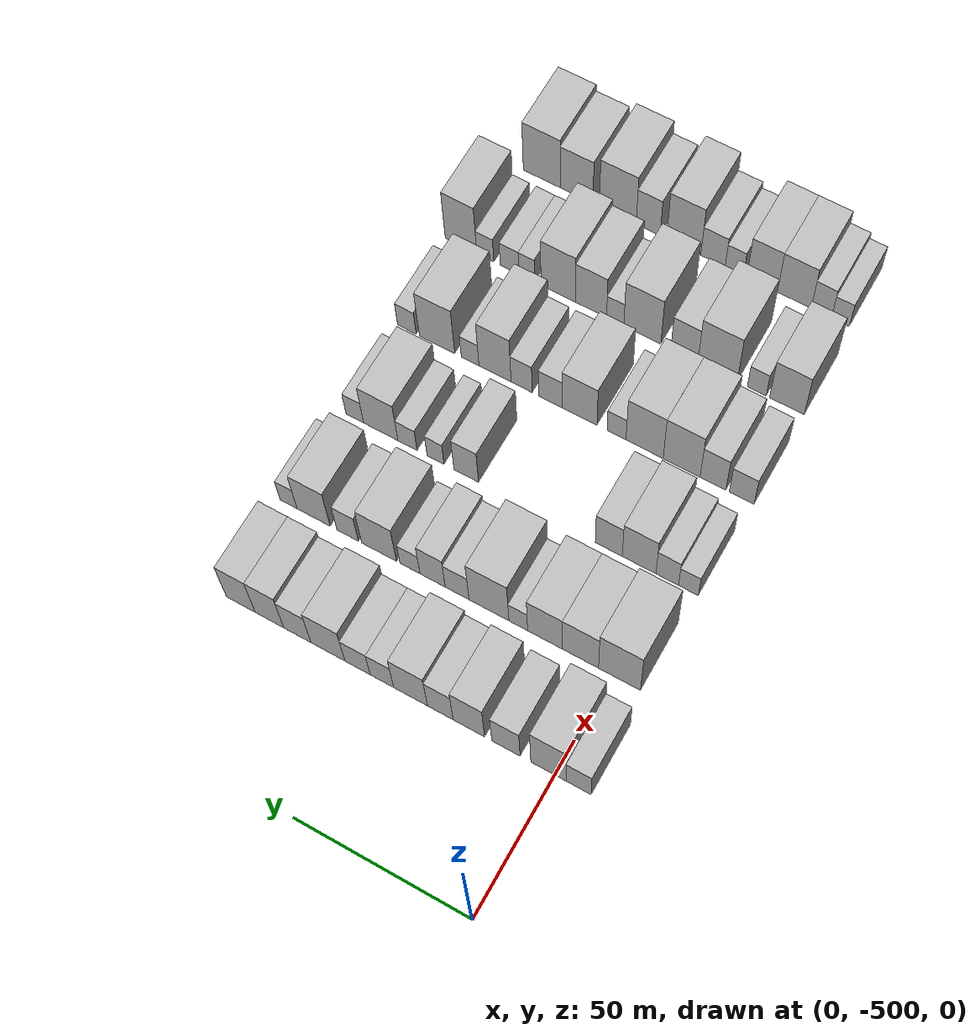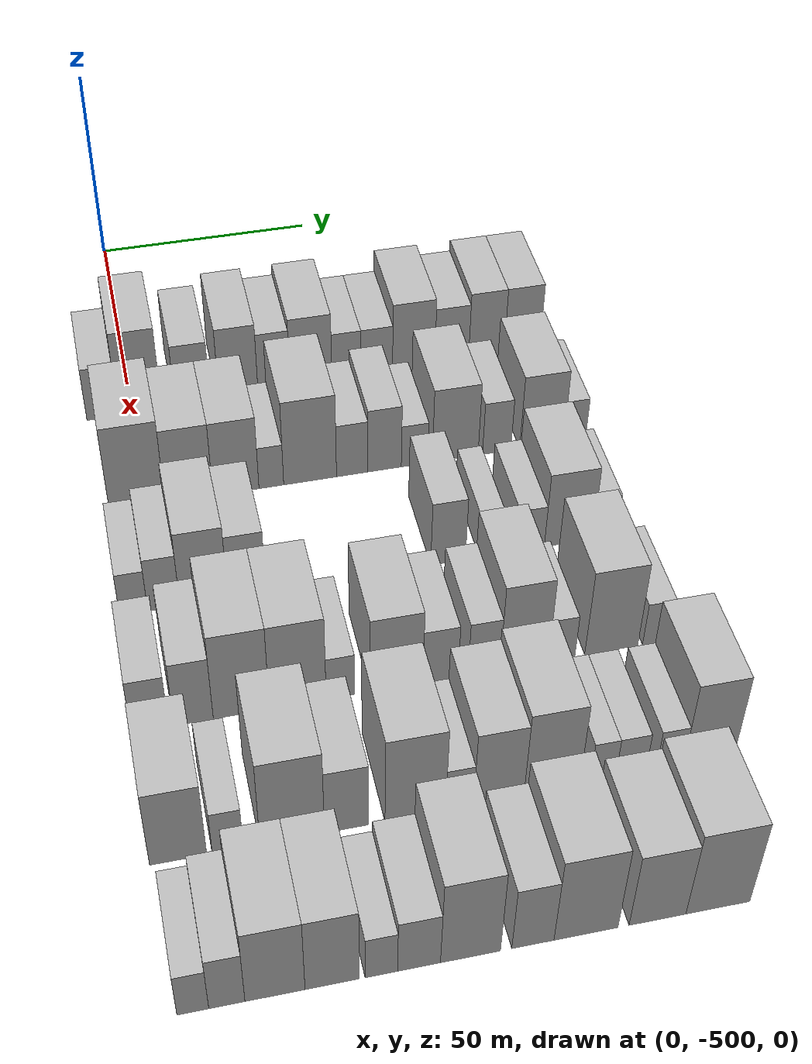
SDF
<sdf version="1.6">
 <world name="default">
  <model name="building_1">
   <static>1</static>
   <pose>50.0000 -506.4859 0 0.000000 0.000000 0.000000</pose>
   <link name="link">
    <pose>0 0 7.50 0 0 0</pose>
    <collision name="collision"><geometry><box><size>20.0000 7.0282 15.0000</size></box></geometry></collision>
    <visual name="visual">
     <cast_shadows>0</cast_shadows>
     <geometry><box><size>20.0000 7.0282 15.0000</size></box></geometry>
     <material>
      <script>
       <uri>model://HANNAS_wall/materials/scripts</uri>
       <uri>model://HANNAS_wall/materials/textures</uri>
       <name>vrc/HANNAS_wall</name>
      </script>
     </material>
    </visual>
   </link>
  </model>
  <model name="building_2">
   <static>1</static>
   <pose>50.0000 -498.0735 0 0.000000 0.000000 0.000000</pose>
   <link name="link">
    <pose>0 0 12.00 0 0 0</pose>
    <collision name="collision"><geometry><box><size>20.0000 9.7965 24.0000</size></box></geometry></collision>
    <visual name="visual">
     <cast_shadows>0</cast_shadows>
     <geometry><box><size>20.0000 9.7965 24.0000</size></box></geometry>
     <material>
      <script>
       <uri>model://HANNAS_wall/materials/scripts</uri>
       <uri>model://HANNAS_wall/materials/textures</uri>
       <name>vrc/HANNAS_wall</name>
      </script>
     </material>
    </visual>
   </link>
  </model>
  <model name="building_3">
   <static>1</static>
   <pose>50.0000 -486.1801 0 0.000000 0.000000 0.000000</pose>
   <link name="link">
    <pose>0 0 9.00 0 0 0</pose>
    <collision name="collision"><geometry><box><size>20.0000 7.9903 18.0000</size></box></geometry></collision>
    <visual name="visual">
     <cast_shadows>0</cast_shadows>
     <geometry><box><size>20.0000 7.9903 18.0000</size></box></geometry>
     <material>
      <script>
       <uri>model://HANNAS_wall/materials/scripts</uri>
       <uri>model://HANNAS_wall/materials/textures</uri>
       <name>vrc/HANNAS_wall</name>
      </script>
     </material>
    </visual>
   </link>
  </model>
  <model name="building_4">
   <static>1</static>
   <pose>50.0000 -475.7172 0 0.000000 0.000000 0.000000</pose>
   <link name="link">
    <pose>0 0 10.50 0 0 0</pose>
    <collision name="collision"><geometry><box><size>20.0000 8.9356 21.0000</size></box></geometry></collision>
    <visual name="visual">
     <cast_shadows>0</cast_shadows>
     <geometry><box><size>20.0000 8.9356 21.0000</size></box></geometry>
     <material>
      <script>
       <uri>model://HANNAS_wall/materials/scripts</uri>
       <uri>model://HANNAS_wall/materials/textures</uri>
       <name>vrc/HANNAS_wall</name>
      </script>
     </material>
    </visual>
   </link>
  </model>
  <model name="building_5">
   <static>1</static>
   <pose>50.0000 -467.5836 0 0.000000 0.000000 0.000000</pose>
   <link name="link">
    <pose>0 0 9.00 0 0 0</pose>
    <collision name="collision"><geometry><box><size>20.0000 7.3315 18.0000</size></box></geometry></collision>
    <visual name="visual">
     <cast_shadows>0</cast_shadows>
     <geometry><box><size>20.0000 7.3315 18.0000</size></box></geometry>
     <material>
      <script>
       <uri>model://HANNAS_wall/materials/scripts</uri>
       <uri>model://HANNAS_wall/materials/textures</uri>
       <name>vrc/HANNAS_wall</name>
      </script>
     </material>
    </visual>
   </link>
  </model>
  <model name="building_6">
   <static>1</static>
   <pose>50.0000 -459.0669 0 0.000000 0.000000 0.000000</pose>
   <link name="link">
    <pose>0 0 10.50 0 0 0</pose>
    <collision name="collision"><geometry><box><size>20.0000 9.7020 21.0000</size></box></geometry></collision>
    <visual name="visual">
     <cast_shadows>0</cast_shadows>
     <geometry><box><size>20.0000 9.7020 21.0000</size></box></geometry>
     <material>
      <script>
       <uri>model://HANNAS_wall/materials/scripts</uri>
       <uri>model://HANNAS_wall/materials/textures</uri>
       <name>vrc/HANNAS_wall</name>
      </script>
     </material>
    </visual>
   </link>
  </model>
  <model name="building_7">
   <static>1</static>
   <pose>50.0000 -450.8194 0 0.000000 0.000000 0.000000</pose>
   <link name="link">
    <pose>0 0 7.50 0 0 0</pose>
    <collision name="collision"><geometry><box><size>20.0000 6.7930 15.0000</size></box></geometry></collision>
    <visual name="visual">
     <cast_shadows>0</cast_shadows>
     <geometry><box><size>20.0000 6.7930 15.0000</size></box></geometry>
     <material>
      <script>
       <uri>model://HANNAS_wall/materials/scripts</uri>
       <uri>model://HANNAS_wall/materials/textures</uri>
       <name>vrc/HANNAS_wall</name>
      </script>
     </material>
    </visual>
   </link>
  </model>
  <model name="building_8">
   <static>1</static>
   <pose>50.0000 -443.7430 0 0.000000 0.000000 0.000000</pose>
   <link name="link">
    <pose>0 0 7.50 0 0 0</pose>
    <collision name="collision"><geometry><box><size>20.0000 7.3599 15.0000</size></box></geometry></collision>
    <visual name="visual">
     <cast_shadows>0</cast_shadows>
     <geometry><box><size>20.0000 7.3599 15.0000</size></box></geometry>
     <material>
      <script>
       <uri>model://HANNAS_wall/materials/scripts</uri>
       <uri>model://HANNAS_wall/materials/textures</uri>
       <name>vrc/HANNAS_wall</name>
      </script>
     </material>
    </visual>
   </link>
  </model>
  <model name="building_9">
   <static>1</static>
   <pose>50.0000 -435.0999 0 0.000000 0.000000 0.000000</pose>
   <link name="link">
    <pose>0 0 10.50 0 0 0</pose>
    <collision name="collision"><geometry><box><size>20.0000 9.9263 21.0000</size></box></geometry></collision>
    <visual name="visual">
     <cast_shadows>0</cast_shadows>
     <geometry><box><size>20.0000 9.9263 21.0000</size></box></geometry>
     <material>
      <script>
       <uri>model://HANNAS_wall/materials/scripts</uri>
       <uri>model://HANNAS_wall/materials/textures</uri>
       <name>vrc/HANNAS_wall</name>
      </script>
     </material>
    </visual>
   </link>
  </model>
  <model name="building_10">
   <static>1</static>
   <pose>50.0000 -426.1327 0 0.000000 0.000000 0.000000</pose>
   <link name="link">
    <pose>0 0 9.00 0 0 0</pose>
    <collision name="collision"><geometry><box><size>20.0000 8.0081 18.0000</size></box></geometry></collision>
    <visual name="visual">
     <cast_shadows>0</cast_shadows>
     <geometry><box><size>20.0000 8.0081 18.0000</size></box></geometry>
     <material>
      <script>
       <uri>model://HANNAS_wall/materials/scripts</uri>
       <uri>model://HANNAS_wall/materials/textures</uri>
       <name>vrc/HANNAS_wall</name>
      </script>
     </material>
    </visual>
   </link>
  </model>
  <model name="building_11">
   <static>1</static>
   <pose>50.0000 -417.8920 0 0.000000 0.000000 0.000000</pose>
   <link name="link">
    <pose>0 0 10.50 0 0 0</pose>
    <collision name="collision"><geometry><box><size>20.0000 8.4732 21.0000</size></box></geometry></collision>
    <visual name="visual">
     <cast_shadows>0</cast_shadows>
     <geometry><box><size>20.0000 8.4732 21.0000</size></box></geometry>
     <material>
      <script>
       <uri>model://HANNAS_wall/materials/scripts</uri>
       <uri>model://HANNAS_wall/materials/textures</uri>
       <name>vrc/HANNAS_wall</name>
      </script>
     </material>
    </visual>
   </link>
  </model>
  <model name="building_12">
   <static>1</static>
   <pose>50.0000 -409.3800 0 0.000000 0.000000 0.000000</pose>
   <link name="link">
    <pose>0 0 10.50 0 0 0</pose>
    <collision name="collision"><geometry><box><size>20.0000 8.5509 21.0000</size></box></geometry></collision>
    <visual name="visual">
     <cast_shadows>0</cast_shadows>
     <geometry><box><size>20.0000 8.5509 21.0000</size></box></geometry>
     <material>
      <script>
       <uri>model://HANNAS_wall/materials/scripts</uri>
       <uri>model://HANNAS_wall/materials/textures</uri>
       <name>vrc/HANNAS_wall</name>
      </script>
     </material>
    </visual>
   </link>
  </model>
  <model name="building_107">
   <static>1</static>
   <pose>79.0000 -502.0771 0 0.000000 0.000000 0.000000</pose>
   <link name="link">
    <pose>0 0 12.00 0 0 0</pose>
    <collision name="collision"><geometry><box><size>20.0000 11.8457 24.0000</size></box></geometry></collision>
    <visual name="visual">
     <cast_shadows>0</cast_shadows>
     <geometry><box><size>20.0000 11.8457 24.0000</size></box></geometry>
     <material>
      <script>
       <uri>model://HANNAS_wall/materials/scripts</uri>
       <uri>model://HANNAS_wall/materials/textures</uri>
       <name>vrc/HANNAS_wall</name>
      </script>
     </material>
    </visual>
   </link>
  </model>
  <model name="building_108">
   <static>1</static>
   <pose>79.0000 -491.0180 0 0.000000 0.000000 0.000000</pose>
   <link name="link">
    <pose>0 0 10.50 0 0 0</pose>
    <collision name="collision"><geometry><box><size>20.0000 10.2726 21.0000</size></box></geometry></collision>
    <visual name="visual">
     <cast_shadows>0</cast_shadows>
     <geometry><box><size>20.0000 10.2726 21.0000</size></box></geometry>
     <material>
      <script>
       <uri>model://HANNAS_wall/materials/scripts</uri>
       <uri>model://HANNAS_wall/materials/textures</uri>
       <name>vrc/HANNAS_wall</name>
      </script>
     </material>
    </visual>
   </link>
  </model>
  <model name="building_109">
   <static>1</static>
   <pose>79.0000 -480.9050 0 0.000000 0.000000 0.000000</pose>
   <link name="link">
    <pose>0 0 10.50 0 0 0</pose>
    <collision name="collision"><geometry><box><size>20.0000 9.9533 21.0000</size></box></geometry></collision>
    <visual name="visual">
     <cast_shadows>0</cast_shadows>
     <geometry><box><size>20.0000 9.9533 21.0000</size></box></geometry>
     <material>
      <script>
       <uri>model://HANNAS_wall/materials/scripts</uri>
       <uri>model://HANNAS_wall/materials/textures</uri>
       <name>vrc/HANNAS_wall</name>
      </script>
     </material>
    </visual>
   </link>
  </model>
  <model name="building_110">
   <static>1</static>
   <pose>79.0000 -473.2310 0 0.000000 0.000000 0.000000</pose>
   <link name="link">
    <pose>0 0 6.00 0 0 0</pose>
    <collision name="collision"><geometry><box><size>20.0000 5.3948 12.0000</size></box></geometry></collision>
    <visual name="visual">
     <cast_shadows>0</cast_shadows>
     <geometry><box><size>20.0000 5.3948 12.0000</size></box></geometry>
     <material>
      <script>
       <uri>model://HANNAS_wall/materials/scripts</uri>
       <uri>model://HANNAS_wall/materials/textures</uri>
       <name>vrc/HANNAS_wall</name>
      </script>
     </material>
    </visual>
   </link>
  </model>
  <model name="building_111">
   <static>1</static>
   <pose>79.0000 -464.7472 0 0.000000 0.000000 0.000000</pose>
   <link name="link">
    <pose>0 0 12.00 0 0 0</pose>
    <collision name="collision"><geometry><box><size>20.0000 11.5729 24.0000</size></box></geometry></collision>
    <visual name="visual">
     <cast_shadows>0</cast_shadows>
     <geometry><box><size>20.0000 11.5729 24.0000</size></box></geometry>
     <material>
      <script>
       <uri>model://HANNAS_wall/materials/scripts</uri>
       <uri>model://HANNAS_wall/materials/textures</uri>
       <name>vrc/HANNAS_wall</name>
      </script>
     </material>
    </visual>
   </link>
  </model>
  <model name="building_112">
   <static>1</static>
   <pose>79.0000 -455.4876 0 0.000000 0.000000 0.000000</pose>
   <link name="link">
    <pose>0 0 7.50 0 0 0</pose>
    <collision name="collision"><geometry><box><size>20.0000 6.9462 15.0000</size></box></geometry></collision>
    <visual name="visual">
     <cast_shadows>0</cast_shadows>
     <geometry><box><size>20.0000 6.9462 15.0000</size></box></geometry>
     <material>
      <script>
       <uri>model://HANNAS_wall/materials/scripts</uri>
       <uri>model://HANNAS_wall/materials/textures</uri>
       <name>vrc/HANNAS_wall</name>
      </script>
     </material>
    </visual>
   </link>
  </model>
  <model name="building_113">
   <static>1</static>
   <pose>79.0000 -448.3129 0 0.000000 0.000000 0.000000</pose>
   <link name="link">
    <pose>0 0 9.00 0 0 0</pose>
    <collision name="collision"><geometry><box><size>20.0000 7.4033 18.0000</size></box></geometry></collision>
    <visual name="visual">
     <cast_shadows>0</cast_shadows>
     <geometry><box><size>20.0000 7.4033 18.0000</size></box></geometry>
     <material>
      <script>
       <uri>model://HANNAS_wall/materials/scripts</uri>
       <uri>model://HANNAS_wall/materials/textures</uri>
       <name>vrc/HANNAS_wall</name>
      </script>
     </material>
    </visual>
   </link>
  </model>
  <model name="building_114">
   <static>1</static>
   <pose>79.0000 -441.6429 0 0.000000 0.000000 0.000000</pose>
   <link name="link">
    <pose>0 0 6.00 0 0 0</pose>
    <collision name="collision"><geometry><box><size>20.0000 5.9367 12.0000</size></box></geometry></collision>
    <visual name="visual">
     <cast_shadows>0</cast_shadows>
     <geometry><box><size>20.0000 5.9367 12.0000</size></box></geometry>
     <material>
      <script>
       <uri>model://HANNAS_wall/materials/scripts</uri>
       <uri>model://HANNAS_wall/materials/textures</uri>
       <name>vrc/HANNAS_wall</name>
      </script>
     </material>
    </visual>
   </link>
  </model>
  <model name="building_115">
   <static>1</static>
   <pose>79.0000 -432.5298 0 0.000000 0.000000 0.000000</pose>
   <link name="link">
    <pose>0 0 10.50 0 0 0</pose>
    <collision name="collision"><geometry><box><size>20.0000 10.2894 21.0000</size></box></geometry></collision>
    <visual name="visual">
     <cast_shadows>0</cast_shadows>
     <geometry><box><size>20.0000 10.2894 21.0000</size></box></geometry>
     <material>
      <script>
       <uri>model://HANNAS_wall/materials/scripts</uri>
       <uri>model://HANNAS_wall/materials/textures</uri>
       <name>vrc/HANNAS_wall</name>
      </script>
     </material>
    </visual>
   </link>
  </model>
  <model name="building_116">
   <static>1</static>
   <pose>79.0000 -423.1636 0 0.000000 0.000000 0.000000</pose>
   <link name="link">
    <pose>0 0 7.50 0 0 0</pose>
    <collision name="collision"><geometry><box><size>20.0000 6.4431 15.0000</size></box></geometry></collision>
    <visual name="visual">
     <cast_shadows>0</cast_shadows>
     <geometry><box><size>20.0000 6.4431 15.0000</size></box></geometry>
     <material>
      <script>
       <uri>model://HANNAS_wall/materials/scripts</uri>
       <uri>model://HANNAS_wall/materials/textures</uri>
       <name>vrc/HANNAS_wall</name>
      </script>
     </material>
    </visual>
   </link>
  </model>
  <model name="building_117">
   <static>1</static>
   <pose>79.0000 -412.9359 0 0.000000 0.000000 0.000000</pose>
   <link name="link">
    <pose>0 0 10.50 0 0 0</pose>
    <collision name="collision"><geometry><box><size>20.0000 10.0122 21.0000</size></box></geometry></collision>
    <visual name="visual">
     <cast_shadows>0</cast_shadows>
     <geometry><box><size>20.0000 10.0122 21.0000</size></box></geometry>
     <material>
      <script>
       <uri>model://HANNAS_wall/materials/scripts</uri>
       <uri>model://HANNAS_wall/materials/textures</uri>
       <name>vrc/HANNAS_wall</name>
      </script>
     </material>
    </visual>
   </link>
  </model>
  <model name="building_118">
   <static>1</static>
   <pose>79.0000 -405.3935 0 0.000000 0.000000 0.000000</pose>
   <link name="link">
    <pose>0 0 6.00 0 0 0</pose>
    <collision name="collision"><geometry><box><size>20.0000 5.0724 12.0000</size></box></geometry></collision>
    <visual name="visual">
     <cast_shadows>0</cast_shadows>
     <geometry><box><size>20.0000 5.0724 12.0000</size></box></geometry>
     <material>
      <script>
       <uri>model://HANNAS_wall/materials/scripts</uri>
       <uri>model://HANNAS_wall/materials/textures</uri>
       <name>vrc/HANNAS_wall</name>
      </script>
     </material>
    </visual>
   </link>
  </model>
  <model name="building_223">
   <static>1</static>
   <pose>108.0000 -506.1689 0 0.000000 0.000000 0.000000</pose>
   <link name="link">
    <pose>0 0 6.00 0 0 0</pose>
    <collision name="collision"><geometry><box><size>20.0000 5.6621 12.0000</size></box></geometry></collision>
    <visual name="visual">
     <cast_shadows>0</cast_shadows>
     <geometry><box><size>20.0000 5.6621 12.0000</size></box></geometry>
     <material>
      <script>
       <uri>model://HANNAS_wall/materials/scripts</uri>
       <uri>model://HANNAS_wall/materials/textures</uri>
       <name>vrc/HANNAS_wall</name>
      </script>
     </material>
    </visual>
   </link>
  </model>
  <model name="building_224">
   <static>1</static>
   <pose>108.0000 -500.0964 0 0.000000 0.000000 0.000000</pose>
   <link name="link">
    <pose>0 0 7.50 0 0 0</pose>
    <collision name="collision"><geometry><box><size>20.0000 6.4829 15.0000</size></box></geometry></collision>
    <visual name="visual">
     <cast_shadows>0</cast_shadows>
     <geometry><box><size>20.0000 6.4829 15.0000</size></box></geometry>
     <material>
      <script>
       <uri>model://HANNAS_wall/materials/scripts</uri>
       <uri>model://HANNAS_wall/materials/textures</uri>
       <name>vrc/HANNAS_wall</name>
      </script>
     </material>
    </visual>
   </link>
  </model>
  <model name="building_225">
   <static>1</static>
   <pose>108.0000 -491.9991 0 0.000000 0.000000 0.000000</pose>
   <link name="link">
    <pose>0 0 10.50 0 0 0</pose>
    <collision name="collision"><geometry><box><size>20.0000 9.7118 21.0000</size></box></geometry></collision>
    <visual name="visual">
     <cast_shadows>0</cast_shadows>
     <geometry><box><size>20.0000 9.7118 21.0000</size></box></geometry>
     <material>
      <script>
       <uri>model://HANNAS_wall/materials/scripts</uri>
       <uri>model://HANNAS_wall/materials/textures</uri>
       <name>vrc/HANNAS_wall</name>
      </script>
     </material>
    </visual>
   </link>
  </model>
  <model name="building_226">
   <static>1</static>
   <pose>108.0000 -483.2580 0 0.000000 0.000000 0.000000</pose>
   <link name="link">
    <pose>0 0 9.00 0 0 0</pose>
    <collision name="collision"><geometry><box><size>20.0000 7.7704 18.0000</size></box></geometry></collision>
    <visual name="visual">
     <cast_shadows>0</cast_shadows>
     <geometry><box><size>20.0000 7.7704 18.0000</size></box></geometry>
     <material>
      <script>
       <uri>model://HANNAS_wall/materials/scripts</uri>
       <uri>model://HANNAS_wall/materials/textures</uri>
       <name>vrc/HANNAS_wall</name>
      </script>
     </material>
    </visual>
   </link>
  </model>
  <model name="building_227">
   <static>1</static>
   <pose>108.0000 -441.3604 0 0.000000 0.000000 0.000000</pose>
   <link name="link">
    <pose>0 0 9.00 0 0 0</pose>
    <collision name="collision"><geometry><box><size>20.0000 7.3416 18.0000</size></box></geometry></collision>
    <visual name="visual">
     <cast_shadows>0</cast_shadows>
     <geometry><box><size>20.0000 7.3416 18.0000</size></box></geometry>
     <material>
      <script>
       <uri>model://HANNAS_wall/materials/scripts</uri>
       <uri>model://HANNAS_wall/materials/textures</uri>
       <name>vrc/HANNAS_wall</name>
      </script>
     </material>
    </visual>
   </link>
  </model>
  <model name="building_228">
   <static>1</static>
   <pose>108.0000 -432.1380 0 0.000000 0.000000 0.000000</pose>
   <link name="link">
    <pose>0 0 6.00 0 0 0</pose>
    <collision name="collision"><geometry><box><size>20.0000 5.1033 12.0000</size></box></geometry></collision>
    <visual name="visual">
     <cast_shadows>0</cast_shadows>
     <geometry><box><size>20.0000 5.1033 12.0000</size></box></geometry>
     <material>
      <script>
       <uri>model://HANNAS_wall/materials/scripts</uri>
       <uri>model://HANNAS_wall/materials/textures</uri>
       <name>vrc/HANNAS_wall</name>
      </script>
     </material>
    </visual>
   </link>
  </model>
  <model name="building_229">
   <static>1</static>
   <pose>108.0000 -423.6889 0 0.000000 0.000000 0.000000</pose>
   <link name="link">
    <pose>0 0 6.00 0 0 0</pose>
    <collision name="collision"><geometry><box><size>20.0000 5.7948 12.0000</size></box></geometry></collision>
    <visual name="visual">
     <cast_shadows>0</cast_shadows>
     <geometry><box><size>20.0000 5.7948 12.0000</size></box></geometry>
     <material>
      <script>
       <uri>model://HANNAS_wall/materials/scripts</uri>
       <uri>model://HANNAS_wall/materials/textures</uri>
       <name>vrc/HANNAS_wall</name>
      </script>
     </material>
    </visual>
   </link>
  </model>
  <model name="building_230">
   <static>1</static>
   <pose>108.0000 -415.5641 0 0.000000 0.000000 0.000000</pose>
   <link name="link">
    <pose>0 0 10.50 0 0 0</pose>
    <collision name="collision"><geometry><box><size>20.0000 10.4550 21.0000</size></box></geometry></collision>
    <visual name="visual">
     <cast_shadows>0</cast_shadows>
     <geometry><box><size>20.0000 10.4550 21.0000</size></box></geometry>
     <material>
      <script>
       <uri>model://HANNAS_wall/materials/scripts</uri>
       <uri>model://HANNAS_wall/materials/textures</uri>
       <name>vrc/HANNAS_wall</name>
      </script>
     </material>
    </visual>
   </link>
  </model>
  <model name="building_231">
   <static>1</static>
   <pose>108.0000 -407.6584 0 0.000000 0.000000 0.000000</pose>
   <link name="link">
    <pose>0 0 6.00 0 0 0</pose>
    <collision name="collision"><geometry><box><size>20.0000 5.3563 12.0000</size></box></geometry></collision>
    <visual name="visual">
     <cast_shadows>0</cast_shadows>
     <geometry><box><size>20.0000 5.3563 12.0000</size></box></geometry>
     <material>
      <script>
       <uri>model://HANNAS_wall/materials/scripts</uri>
       <uri>model://HANNAS_wall/materials/textures</uri>
       <name>vrc/HANNAS_wall</name>
      </script>
     </material>
    </visual>
   </link>
  </model>
  <model name="building_329">
   <static>1</static>
   <pose>137.0000 -506.4355 0 0.000000 0.000000 0.000000</pose>
   <link name="link">
    <pose>0 0 7.50 0 0 0</pose>
    <collision name="collision"><geometry><box><size>20.0000 7.1289 15.0000</size></box></geometry></collision>
    <visual name="visual">
     <cast_shadows>0</cast_shadows>
     <geometry><box><size>20.0000 7.1289 15.0000</size></box></geometry>
     <material>
      <script>
       <uri>model://HANNAS_wall/materials/scripts</uri>
       <uri>model://HANNAS_wall/materials/textures</uri>
       <name>vrc/HANNAS_wall</name>
      </script>
     </material>
    </visual>
   </link>
  </model>
  <model name="building_330">
   <static>1</static>
   <pose>137.0000 -498.1234 0 0.000000 0.000000 0.000000</pose>
   <link name="link">
    <pose>0 0 9.00 0 0 0</pose>
    <collision name="collision"><geometry><box><size>20.0000 7.4953 18.0000</size></box></geometry></collision>
    <visual name="visual">
     <cast_shadows>0</cast_shadows>
     <geometry><box><size>20.0000 7.4953 18.0000</size></box></geometry>
     <material>
      <script>
       <uri>model://HANNAS_wall/materials/scripts</uri>
       <uri>model://HANNAS_wall/materials/textures</uri>
       <name>vrc/HANNAS_wall</name>
      </script>
     </material>
    </visual>
   </link>
  </model>
  <model name="building_331">
   <static>1</static>
   <pose>137.0000 -488.9747 0 0.000000 0.000000 0.000000</pose>
   <link name="link">
    <pose>0 0 12.00 0 0 0</pose>
    <collision name="collision"><geometry><box><size>20.0000 10.8023 24.0000</size></box></geometry></collision>
    <visual name="visual">
     <cast_shadows>0</cast_shadows>
     <geometry><box><size>20.0000 10.8023 24.0000</size></box></geometry>
     <material>
      <script>
       <uri>model://HANNAS_wall/materials/scripts</uri>
       <uri>model://HANNAS_wall/materials/textures</uri>
       <name>vrc/HANNAS_wall</name>
      </script>
     </material>
    </visual>
   </link>
  </model>
  <model name="building_332">
   <static>1</static>
   <pose>137.0000 -478.0827 0 0.000000 0.000000 0.000000</pose>
   <link name="link">
    <pose>0 0 12.00 0 0 0</pose>
    <collision name="collision"><geometry><box><size>20.0000 10.9816 24.0000</size></box></geometry></collision>
    <visual name="visual">
     <cast_shadows>0</cast_shadows>
     <geometry><box><size>20.0000 10.9816 24.0000</size></box></geometry>
     <material>
      <script>
       <uri>model://HANNAS_wall/materials/scripts</uri>
       <uri>model://HANNAS_wall/materials/textures</uri>
       <name>vrc/HANNAS_wall</name>
      </script>
     </material>
    </visual>
   </link>
  </model>
  <model name="building_333">
   <static>1</static>
   <pose>137.0000 -469.8035 0 0.000000 0.000000 0.000000</pose>
   <link name="link">
    <pose>0 0 6.00 0 0 0</pose>
    <collision name="collision"><geometry><box><size>20.0000 5.5770 12.0000</size></box></geometry></collision>
    <visual name="visual">
     <cast_shadows>0</cast_shadows>
     <geometry><box><size>20.0000 5.5770 12.0000</size></box></geometry>
     <material>
      <script>
       <uri>model://HANNAS_wall/materials/scripts</uri>
       <uri>model://HANNAS_wall/materials/textures</uri>
       <name>vrc/HANNAS_wall</name>
      </script>
     </material>
    </visual>
   </link>
  </model>
  <model name="building_334">
   <static>1</static>
   <pose>137.0000 -458.8106 0 0.000000 0.000000 0.000000</pose>
   <link name="link">
    <pose>0 0 10.50 0 0 0</pose>
    <collision name="collision"><geometry><box><size>20.0000 10.4088 21.0000</size></box></geometry></collision>
    <visual name="visual">
     <cast_shadows>0</cast_shadows>
     <geometry><box><size>20.0000 10.4088 21.0000</size></box></geometry>
     <material>
      <script>
       <uri>model://HANNAS_wall/materials/scripts</uri>
       <uri>model://HANNAS_wall/materials/textures</uri>
       <name>vrc/HANNAS_wall</name>
      </script>
     </material>
    </visual>
   </link>
  </model>
  <model name="building_335">
   <static>1</static>
   <pose>137.0000 -450.0953 0 0.000000 0.000000 0.000000</pose>
   <link name="link">
    <pose>0 0 7.50 0 0 0</pose>
    <collision name="collision"><geometry><box><size>20.0000 7.0218 15.0000</size></box></geometry></collision>
    <visual name="visual">
     <cast_shadows>0</cast_shadows>
     <geometry><box><size>20.0000 7.0218 15.0000</size></box></geometry>
     <material>
      <script>
       <uri>model://HANNAS_wall/materials/scripts</uri>
       <uri>model://HANNAS_wall/materials/textures</uri>
       <name>vrc/HANNAS_wall</name>
      </script>
     </material>
    </visual>
   </link>
  </model>
  <model name="building_336">
   <static>1</static>
   <pose>137.0000 -441.3980 0 0.000000 0.000000 0.000000</pose>
   <link name="link">
    <pose>0 0 7.50 0 0 0</pose>
    <collision name="collision"><geometry><box><size>20.0000 6.3727 15.0000</size></box></geometry></collision>
    <visual name="visual">
     <cast_shadows>0</cast_shadows>
     <geometry><box><size>20.0000 6.3727 15.0000</size></box></geometry>
     <material>
      <script>
       <uri>model://HANNAS_wall/materials/scripts</uri>
       <uri>model://HANNAS_wall/materials/textures</uri>
       <name>vrc/HANNAS_wall</name>
      </script>
     </material>
    </visual>
   </link>
  </model>
  <model name="building_337">
   <static>1</static>
   <pose>137.0000 -433.3180 0 0.000000 0.000000 0.000000</pose>
   <link name="link">
    <pose>0 0 12.00 0 0 0</pose>
    <collision name="collision"><geometry><box><size>20.0000 9.7874 24.0000</size></box></geometry></collision>
    <visual name="visual">
     <cast_shadows>0</cast_shadows>
     <geometry><box><size>20.0000 9.7874 24.0000</size></box></geometry>
     <material>
      <script>
       <uri>model://HANNAS_wall/materials/scripts</uri>
       <uri>model://HANNAS_wall/materials/textures</uri>
       <name>vrc/HANNAS_wall</name>
      </script>
     </material>
    </visual>
   </link>
  </model>
  <model name="building_338">
   <static>1</static>
   <pose>137.0000 -425.7216 0 0.000000 0.000000 0.000000</pose>
   <link name="link">
    <pose>0 0 6.00 0 0 0</pose>
    <collision name="collision"><geometry><box><size>20.0000 5.4054 12.0000</size></box></geometry></collision>
    <visual name="visual">
     <cast_shadows>0</cast_shadows>
     <geometry><box><size>20.0000 5.4054 12.0000</size></box></geometry>
     <material>
      <script>
       <uri>model://HANNAS_wall/materials/scripts</uri>
       <uri>model://HANNAS_wall/materials/textures</uri>
       <name>vrc/HANNAS_wall</name>
      </script>
     </material>
    </visual>
   </link>
  </model>
  <model name="building_339">
   <static>1</static>
   <pose>137.0000 -415.5761 0 0.000000 0.000000 0.000000</pose>
   <link name="link">
    <pose>0 0 12.00 0 0 0</pose>
    <collision name="collision"><geometry><box><size>20.0000 10.8856 24.0000</size></box></geometry></collision>
    <visual name="visual">
     <cast_shadows>0</cast_shadows>
     <geometry><box><size>20.0000 10.8856 24.0000</size></box></geometry>
     <material>
      <script>
       <uri>model://HANNAS_wall/materials/scripts</uri>
       <uri>model://HANNAS_wall/materials/textures</uri>
       <name>vrc/HANNAS_wall</name>
      </script>
     </material>
    </visual>
   </link>
  </model>
  <model name="building_340">
   <static>1</static>
   <pose>137.0000 -406.2653 0 0.000000 0.000000 0.000000</pose>
   <link name="link">
    <pose>0 0 6.00 0 0 0</pose>
    <collision name="collision"><geometry><box><size>20.0000 5.7360 12.0000</size></box></geometry></collision>
    <visual name="visual">
     <cast_shadows>0</cast_shadows>
     <geometry><box><size>20.0000 5.7360 12.0000</size></box></geometry>
     <material>
      <script>
       <uri>model://HANNAS_wall/materials/scripts</uri>
       <uri>model://HANNAS_wall/materials/textures</uri>
       <name>vrc/HANNAS_wall</name>
      </script>
     </material>
    </visual>
   </link>
  </model>
  <model name="building_445">
   <static>1</static>
   <pose>166.0000 -504.9200 0 0.000000 0.000000 0.000000</pose>
   <link name="link">
    <pose>0 0 10.50 0 0 0</pose>
    <collision name="collision"><geometry><box><size>20.0000 10.1601 21.0000</size></box></geometry></collision>
    <visual name="visual">
     <cast_shadows>0</cast_shadows>
     <geometry><box><size>20.0000 10.1601 21.0000</size></box></geometry>
     <material>
      <script>
       <uri>model://HANNAS_wall/materials/scripts</uri>
       <uri>model://HANNAS_wall/materials/textures</uri>
       <name>vrc/HANNAS_wall</name>
      </script>
     </material>
    </visual>
   </link>
  </model>
  <model name="building_446">
   <static>1</static>
   <pose>166.0000 -496.0609 0 0.000000 0.000000 0.000000</pose>
   <link name="link">
    <pose>0 0 6.00 0 0 0</pose>
    <collision name="collision"><geometry><box><size>20.0000 5.5581 12.0000</size></box></geometry></collision>
    <visual name="visual">
     <cast_shadows>0</cast_shadows>
     <geometry><box><size>20.0000 5.5581 12.0000</size></box></geometry>
     <material>
      <script>
       <uri>model://HANNAS_wall/materials/scripts</uri>
       <uri>model://HANNAS_wall/materials/textures</uri>
       <name>vrc/HANNAS_wall</name>
      </script>
     </material>
    </visual>
   </link>
  </model>
  <model name="building_447">
   <static>1</static>
   <pose>166.0000 -484.4334 0 0.000000 0.000000 0.000000</pose>
   <link name="link">
    <pose>0 0 12.00 0 0 0</pose>
    <collision name="collision"><geometry><box><size>20.0000 11.6968 24.0000</size></box></geometry></collision>
    <visual name="visual">
     <cast_shadows>0</cast_shadows>
     <geometry><box><size>20.0000 11.6968 24.0000</size></box></geometry>
     <material>
      <script>
       <uri>model://HANNAS_wall/materials/scripts</uri>
       <uri>model://HANNAS_wall/materials/textures</uri>
       <name>vrc/HANNAS_wall</name>
      </script>
     </material>
    </visual>
   </link>
  </model>
  <model name="building_448">
   <static>1</static>
   <pose>166.0000 -474.5390 0 0.000000 0.000000 0.000000</pose>
   <link name="link">
    <pose>0 0 9.00 0 0 0</pose>
    <collision name="collision"><geometry><box><size>20.0000 8.0919 18.0000</size></box></geometry></collision>
    <visual name="visual">
     <cast_shadows>0</cast_shadows>
     <geometry><box><size>20.0000 8.0919 18.0000</size></box></geometry>
     <material>
      <script>
       <uri>model://HANNAS_wall/materials/scripts</uri>
       <uri>model://HANNAS_wall/materials/textures</uri>
       <name>vrc/HANNAS_wall</name>
      </script>
     </material>
    </visual>
   </link>
  </model>
  <model name="building_449">
   <static>1</static>
   <pose>166.0000 -461.8876 0 0.000000 0.000000 0.000000</pose>
   <link name="link">
    <pose>0 0 12.00 0 0 0</pose>
    <collision name="collision"><geometry><box><size>20.0000 11.2111 24.0000</size></box></geometry></collision>
    <visual name="visual">
     <cast_shadows>0</cast_shadows>
     <geometry><box><size>20.0000 11.2111 24.0000</size></box></geometry>
     <material>
      <script>
       <uri>model://HANNAS_wall/materials/scripts</uri>
       <uri>model://HANNAS_wall/materials/textures</uri>
       <name>vrc/HANNAS_wall</name>
      </script>
     </material>
    </visual>
   </link>
  </model>
  <model name="building_450">
   <static>1</static>
   <pose>166.0000 -453.6667 0 0.000000 0.000000 0.000000</pose>
   <link name="link">
    <pose>0 0 6.00 0 0 0</pose>
    <collision name="collision"><geometry><box><size>20.0000 5.2306 12.0000</size></box></geometry></collision>
    <visual name="visual">
     <cast_shadows>0</cast_shadows>
     <geometry><box><size>20.0000 5.2306 12.0000</size></box></geometry>
     <material>
      <script>
       <uri>model://HANNAS_wall/materials/scripts</uri>
       <uri>model://HANNAS_wall/materials/textures</uri>
       <name>vrc/HANNAS_wall</name>
      </script>
     </material>
    </visual>
   </link>
  </model>
  <model name="building_451">
   <static>1</static>
   <pose>166.0000 -446.3160 0 0.000000 0.000000 0.000000</pose>
   <link name="link">
    <pose>0 0 10.50 0 0 0</pose>
    <collision name="collision"><geometry><box><size>20.0000 9.4708 21.0000</size></box></geometry></collision>
    <visual name="visual">
     <cast_shadows>0</cast_shadows>
     <geometry><box><size>20.0000 9.4708 21.0000</size></box></geometry>
     <material>
      <script>
       <uri>model://HANNAS_wall/materials/scripts</uri>
       <uri>model://HANNAS_wall/materials/textures</uri>
       <name>vrc/HANNAS_wall</name>
      </script>
     </material>
    </visual>
   </link>
  </model>
  <model name="building_452">
   <static>1</static>
   <pose>166.0000 -436.3001 0 0.000000 0.000000 0.000000</pose>
   <link name="link">
    <pose>0 0 12.00 0 0 0</pose>
    <collision name="collision"><geometry><box><size>20.0000 10.5611 24.0000</size></box></geometry></collision>
    <visual name="visual">
     <cast_shadows>0</cast_shadows>
     <geometry><box><size>20.0000 10.5611 24.0000</size></box></geometry>
     <material>
      <script>
       <uri>model://HANNAS_wall/materials/scripts</uri>
       <uri>model://HANNAS_wall/materials/textures</uri>
       <name>vrc/HANNAS_wall</name>
      </script>
     </material>
    </visual>
   </link>
  </model>
  <model name="building_453">
   <static>1</static>
   <pose>166.0000 -426.5910 0 0.000000 0.000000 0.000000</pose>
   <link name="link">
    <pose>0 0 6.00 0 0 0</pose>
    <collision name="collision"><geometry><box><size>20.0000 4.8570 12.0000</size></box></geometry></collision>
    <visual name="visual">
     <cast_shadows>0</cast_shadows>
     <geometry><box><size>20.0000 4.8570 12.0000</size></box></geometry>
     <material>
      <script>
       <uri>model://HANNAS_wall/materials/scripts</uri>
       <uri>model://HANNAS_wall/materials/textures</uri>
       <name>vrc/HANNAS_wall</name>
      </script>
     </material>
    </visual>
   </link>
  </model>
  <model name="building_454">
   <static>1</static>
   <pose>166.0000 -421.2565 0 0.000000 0.000000 0.000000</pose>
   <link name="link">
    <pose>0 0 6.00 0 0 0</pose>
    <collision name="collision"><geometry><box><size>20.0000 5.8119 12.0000</size></box></geometry></collision>
    <visual name="visual">
     <cast_shadows>0</cast_shadows>
     <geometry><box><size>20.0000 5.8119 12.0000</size></box></geometry>
     <material>
      <script>
       <uri>model://HANNAS_wall/materials/scripts</uri>
       <uri>model://HANNAS_wall/materials/textures</uri>
       <name>vrc/HANNAS_wall</name>
      </script>
     </material>
    </visual>
   </link>
  </model>
  <model name="building_455">
   <static>1</static>
   <pose>166.0000 -413.6846 0 0.000000 0.000000 0.000000</pose>
   <link name="link">
    <pose>0 0 6.00 0 0 0</pose>
    <collision name="collision"><geometry><box><size>20.0000 5.3318 12.0000</size></box></geometry></collision>
    <visual name="visual">
     <cast_shadows>0</cast_shadows>
     <geometry><box><size>20.0000 5.3318 12.0000</size></box></geometry>
     <material>
      <script>
       <uri>model://HANNAS_wall/materials/scripts</uri>
       <uri>model://HANNAS_wall/materials/textures</uri>
       <name>vrc/HANNAS_wall</name>
      </script>
     </material>
    </visual>
   </link>
  </model>
  <model name="building_456">
   <static>1</static>
   <pose>166.0000 -406.0865 0 0.000000 0.000000 0.000000</pose>
   <link name="link">
    <pose>0 0 12.00 0 0 0</pose>
    <collision name="collision"><geometry><box><size>20.0000 9.8645 24.0000</size></box></geometry></collision>
    <visual name="visual">
     <cast_shadows>0</cast_shadows>
     <geometry><box><size>20.0000 9.8645 24.0000</size></box></geometry>
     <material>
      <script>
       <uri>model://HANNAS_wall/materials/scripts</uri>
       <uri>model://HANNAS_wall/materials/textures</uri>
       <name>vrc/HANNAS_wall</name>
      </script>
     </material>
    </visual>
   </link>
  </model>
  <model name="building_564">
   <static>1</static>
   <pose>195.0000 -506.3506 0 0.000000 0.000000 0.000000</pose>
   <link name="link">
    <pose>0 0 6.00 0 0 0</pose>
    <collision name="collision"><geometry><box><size>20.0000 5.2989 12.0000</size></box></geometry></collision>
    <visual name="visual">
     <cast_shadows>0</cast_shadows>
     <geometry><box><size>20.0000 5.2989 12.0000</size></box></geometry>
     <material>
      <script>
       <uri>model://HANNAS_wall/materials/scripts</uri>
       <uri>model://HANNAS_wall/materials/textures</uri>
       <name>vrc/HANNAS_wall</name>
      </script>
     </material>
    </visual>
   </link>
  </model>
  <model name="building_565">
   <static>1</static>
   <pose>195.0000 -500.6788 0 0.000000 0.000000 0.000000</pose>
   <link name="link">
    <pose>0 0 7.50 0 0 0</pose>
    <collision name="collision"><geometry><box><size>20.0000 6.0447 15.0000</size></box></geometry></collision>
    <visual name="visual">
     <cast_shadows>0</cast_shadows>
     <geometry><box><size>20.0000 6.0447 15.0000</size></box></geometry>
     <material>
      <script>
       <uri>model://HANNAS_wall/materials/scripts</uri>
       <uri>model://HANNAS_wall/materials/textures</uri>
       <name>vrc/HANNAS_wall</name>
      </script>
     </material>
    </visual>
   </link>
  </model>
  <model name="building_566">
   <static>1</static>
   <pose>195.0000 -492.5985 0 0.000000 0.000000 0.000000</pose>
   <link name="link">
    <pose>0 0 10.50 0 0 0</pose>
    <collision name="collision"><geometry><box><size>20.0000 10.1157 21.0000</size></box></geometry></collision>
    <visual name="visual">
     <cast_shadows>0</cast_shadows>
     <geometry><box><size>20.0000 10.1157 21.0000</size></box></geometry>
     <material>
      <script>
       <uri>model://HANNAS_wall/materials/scripts</uri>
       <uri>model://HANNAS_wall/materials/textures</uri>
       <name>vrc/HANNAS_wall</name>
      </script>
     </material>
    </visual>
   </link>
  </model>
  <model name="building_567">
   <static>1</static>
   <pose>195.0000 -482.9274 0 0.000000 0.000000 0.000000</pose>
   <link name="link">
    <pose>0 0 10.50 0 0 0</pose>
    <collision name="collision"><geometry><box><size>20.0000 9.2266 21.0000</size></box></geometry></collision>
    <visual name="visual">
     <cast_shadows>0</cast_shadows>
     <geometry><box><size>20.0000 9.2266 21.0000</size></box></geometry>
     <material>
      <script>
       <uri>model://HANNAS_wall/materials/scripts</uri>
       <uri>model://HANNAS_wall/materials/textures</uri>
       <name>vrc/HANNAS_wall</name>
      </script>
     </material>
    </visual>
   </link>
  </model>
  <model name="building_568">
   <static>1</static>
   <pose>195.0000 -474.5363 0 0.000000 0.000000 0.000000</pose>
   <link name="link">
    <pose>0 0 6.00 0 0 0</pose>
    <collision name="collision"><geometry><box><size>20.0000 5.5556 12.0000</size></box></geometry></collision>
    <visual name="visual">
     <cast_shadows>0</cast_shadows>
     <geometry><box><size>20.0000 5.5556 12.0000</size></box></geometry>
     <material>
      <script>
       <uri>model://HANNAS_wall/materials/scripts</uri>
       <uri>model://HANNAS_wall/materials/textures</uri>
       <name>vrc/HANNAS_wall</name>
      </script>
     </material>
    </visual>
   </link>
  </model>
  <model name="building_569">
   <static>1</static>
   <pose>195.0000 -468.0466 0 0.000000 0.000000 0.000000</pose>
   <link name="link">
    <pose>0 0 7.50 0 0 0</pose>
    <collision name="collision"><geometry><box><size>20.0000 7.4237 15.0000</size></box></geometry></collision>
    <visual name="visual">
     <cast_shadows>0</cast_shadows>
     <geometry><box><size>20.0000 7.4237 15.0000</size></box></geometry>
     <material>
      <script>
       <uri>model://HANNAS_wall/materials/scripts</uri>
       <uri>model://HANNAS_wall/materials/textures</uri>
       <name>vrc/HANNAS_wall</name>
      </script>
     </material>
    </visual>
   </link>
  </model>
  <model name="building_570">
   <static>1</static>
   <pose>195.0000 -459.1047 0 0.000000 0.000000 0.000000</pose>
   <link name="link">
    <pose>0 0 12.00 0 0 0</pose>
    <collision name="collision"><geometry><box><size>20.0000 10.4602 24.0000</size></box></geometry></collision>
    <visual name="visual">
     <cast_shadows>0</cast_shadows>
     <geometry><box><size>20.0000 10.4602 24.0000</size></box></geometry>
     <material>
      <script>
       <uri>model://HANNAS_wall/materials/scripts</uri>
       <uri>model://HANNAS_wall/materials/textures</uri>
       <name>vrc/HANNAS_wall</name>
      </script>
     </material>
    </visual>
   </link>
  </model>
  <model name="building_571">
   <static>1</static>
   <pose>195.0000 -448.1598 0 0.000000 0.000000 0.000000</pose>
   <link name="link">
    <pose>0 0 9.00 0 0 0</pose>
    <collision name="collision"><geometry><box><size>20.0000 7.4295 18.0000</size></box></geometry></collision>
    <visual name="visual">
     <cast_shadows>0</cast_shadows>
     <geometry><box><size>20.0000 7.4295 18.0000</size></box></geometry>
     <material>
      <script>
       <uri>model://HANNAS_wall/materials/scripts</uri>
       <uri>model://HANNAS_wall/materials/textures</uri>
       <name>vrc/HANNAS_wall</name>
      </script>
     </material>
    </visual>
   </link>
  </model>
  <model name="building_572">
   <static>1</static>
   <pose>195.0000 -438.7467 0 0.000000 0.000000 0.000000</pose>
   <link name="link">
    <pose>0 0 12.00 0 0 0</pose>
    <collision name="collision"><geometry><box><size>20.0000 11.3969 24.0000</size></box></geometry></collision>
    <visual name="visual">
     <cast_shadows>0</cast_shadows>
     <geometry><box><size>20.0000 11.3969 24.0000</size></box></geometry>
     <material>
      <script>
       <uri>model://HANNAS_wall/materials/scripts</uri>
       <uri>model://HANNAS_wall/materials/textures</uri>
       <name>vrc/HANNAS_wall</name>
      </script>
     </material>
    </visual>
   </link>
  </model>
  <model name="building_573">
   <static>1</static>
   <pose>195.0000 -425.9259 0 0.000000 0.000000 0.000000</pose>
   <link name="link">
    <pose>0 0 10.50 0 0 0</pose>
    <collision name="collision"><geometry><box><size>20.0000 10.2445 21.0000</size></box></geometry></collision>
    <visual name="visual">
     <cast_shadows>0</cast_shadows>
     <geometry><box><size>20.0000 10.2445 21.0000</size></box></geometry>
     <material>
      <script>
       <uri>model://HANNAS_wall/materials/scripts</uri>
       <uri>model://HANNAS_wall/materials/textures</uri>
       <name>vrc/HANNAS_wall</name>
      </script>
     </material>
    </visual>
   </link>
  </model>
  <model name="building_574">
   <static>1</static>
   <pose>195.0000 -414.9715 0 0.000000 0.000000 0.000000</pose>
   <link name="link">
    <pose>0 0 12.00 0 0 0</pose>
    <collision name="collision"><geometry><box><size>20.0000 11.6644 24.0000</size></box></geometry></collision>
    <visual name="visual">
     <cast_shadows>0</cast_shadows>
     <geometry><box><size>20.0000 11.6644 24.0000</size></box></geometry>
     <material>
      <script>
       <uri>model://HANNAS_wall/materials/scripts</uri>
       <uri>model://HANNAS_wall/materials/textures</uri>
       <name>vrc/HANNAS_wall</name>
      </script>
     </material>
    </visual>
   </link>
  </model>
 </world>
</sdf>
